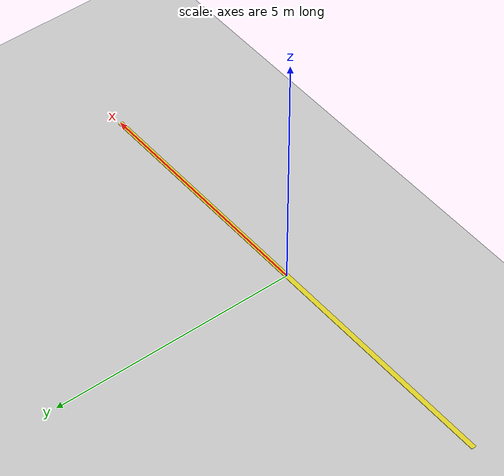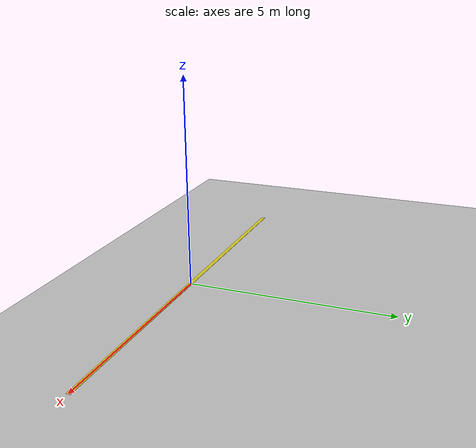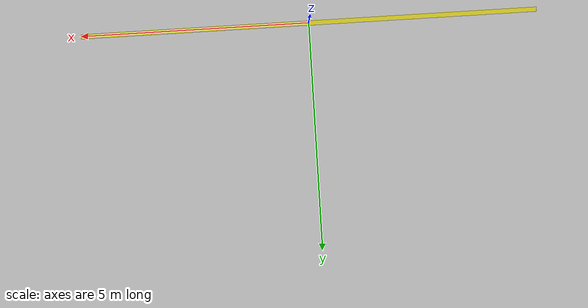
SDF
<?xml version="1.0"?>
<sdf version="1.6">
  <world name="racetrack_world">
    <physics type="ode">
      <ode>
        <solver>
          <type>quick</type>
          <iters>50</iters>
          <sor>1.3</sor>
        </solver>
        <constraints>
          <cfm>0.0</cfm>
          <erp>0.2</erp>
          <contact_max_correcting_vel>100.0</contact_max_correcting_vel>
          <contact_surface_layer>0.001</contact_surface_layer>
        </constraints>
      </ode>
      <real_time_update_rate>1000.0</real_time_update_rate>
      <max_step_size>0.001</max_step_size>
    </physics>

    <include>
      <uri>model://sun</uri>
    </include>

    <include>
      <uri>model://ground_plane</uri>
    </include>

    <model name="yellow_line">
      <static>true</static>
      <link name="link">
        <collision name="collision">
          <geometry>
            <box>
              <size>10 0.1 0.0</size>
            </box>
          </geometry>
        </collision>
        <visual name="visual">
          <geometry>
            <box>
              <size>10 0.1 0.01</size>
            </box>
          </geometry>
          <material>
            <script>
              <uri>file://.gazebo/materials/scripts/gazebo.material</uri>
              <name>Gazebo/Yellow</name>
            </script>
          </material>
        </visual>
      </link>
      <pose>0 0 0.005 0 0 0</pose>
    </model>

    <!-- Add more yellow line models to create a track with curves -->

  </world>
</sdf>
